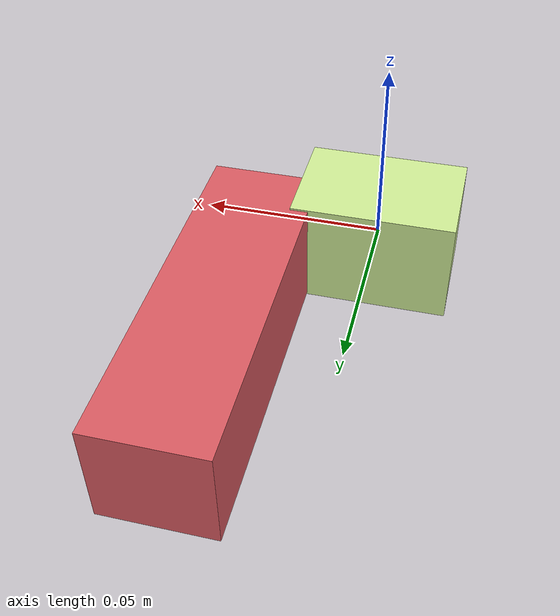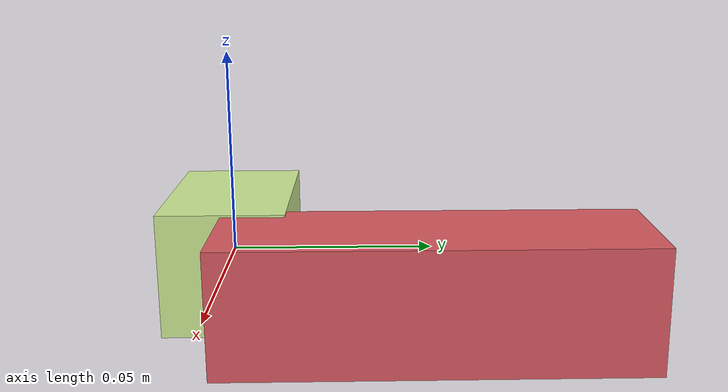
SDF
<sdf version="1.4"><world name="default"><model name="object0"><link name="link1"><pose>0 0 0 0 0 0</pose><inertial><pose>0 0 0 0 0 0</pose><mass>0.023860876547269587</mass><inertia><ixx>3.5791314820904375e-06</ixx><ixy>0</ixy><iyy>5.6718775737578325e-06</iyy><ixz>0</ixz><iyz>0</iyz><izz>5.6718775737578325e-06</izz></inertia></inertial><visual name="link1_visual"><pose>0 0  0 0 0 0</pose><geometry><box><size>0.04418680842086961 0.03 0.03</size></box></geometry><material><diffuse>0.8173132841835216 0.9335065620941072 0.5887122144473724 1</diffuse></material></visual><collision><pose>0 0  0 0 0 0</pose><geometry><box><size>0.04418680842086961 0.03 0.03</size></box></geometry></collision></link><link name="link2"><pose>0.03223320685985825 0.04890940212353362 0 0 0 0</pose><inertial><pose>0 0 0 0 0 0</pose><mass>0.052825668423257234</mass><inertia><ixx>4.582975229882679e-05</ixx><ixy>0</ixy><iyy>7.66412406040757e-06</iyy><ixz>0</ixz><iyz>0</iyz><izz>4.60894785019078e-05</izz></inertia></inertial><visual name="link2_visual"><pose>0 0  0 0 0 0</pose><geometry><box><size>0.03 0.09782531189492082 0.028999999999999998</size></box></geometry><material><diffuse>0.8605261812338412 0.35700896969164697 0.3863719937998714 1</diffuse></material></visual><collision><pose>0 0  0 0 0 0</pose><geometry><box><size>0.03 0.09782531189492082 0.028999999999999998</size></box></geometry></collision></link><joint name="link_joint_0" type="fixed"><parent>link1</parent><child>link2</child><pose>0 0 0 0 0 0</pose><axis><xyz>0 0 1</xyz></axis></joint></model></world></sdf>
